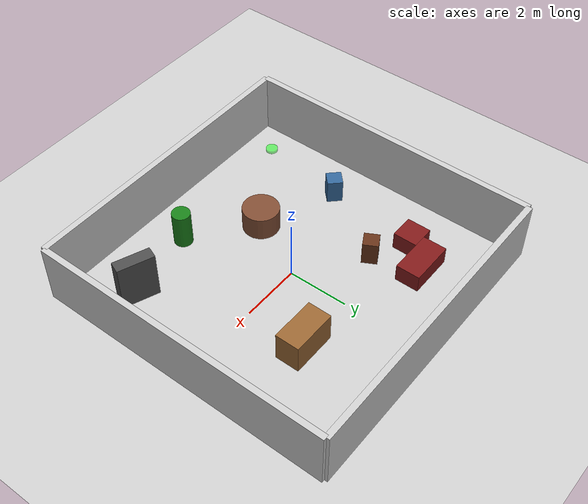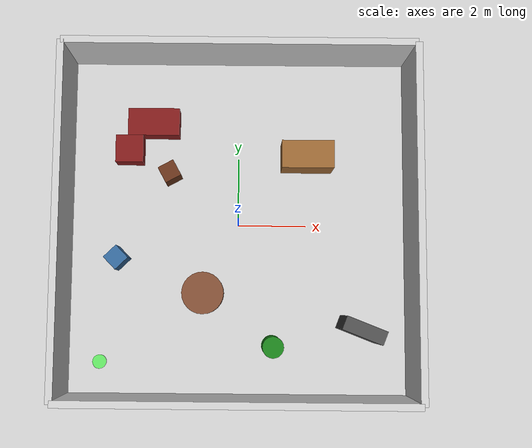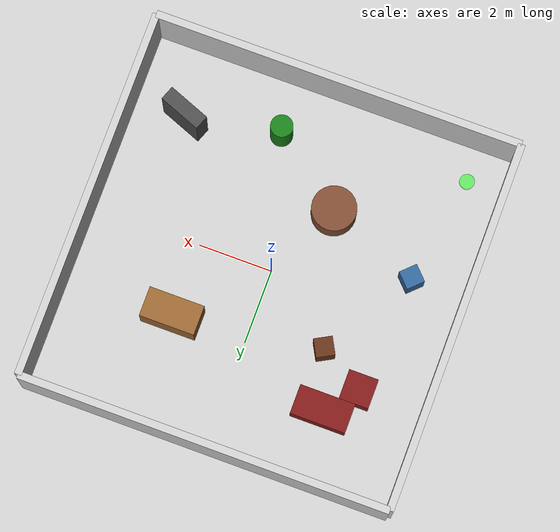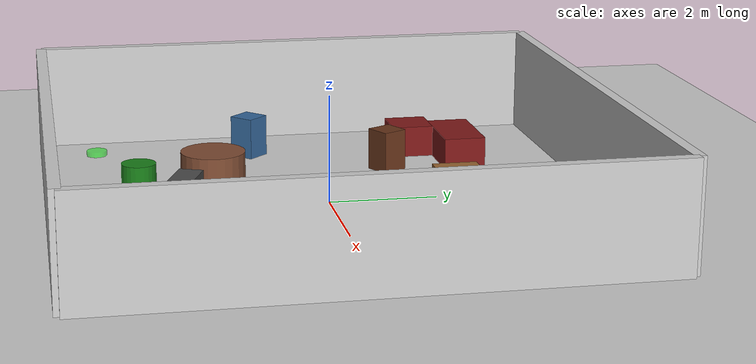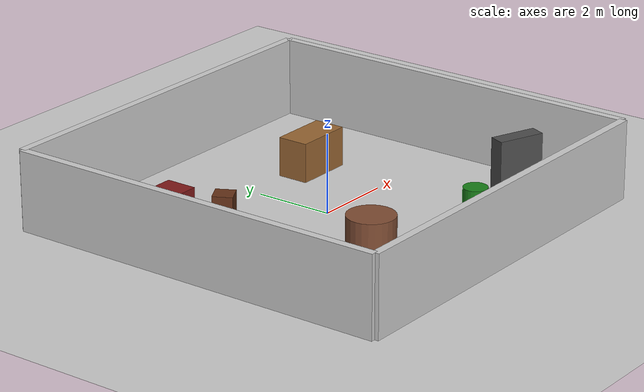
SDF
<?xml version="1.0" ?>
<sdf version="1.6">
  <world name="obstacle_test_world">

    <!-- Basic world settings -->
    <include>
      <uri>model://ground_plane</uri>
    </include>

    <include>
      <uri>model://sun</uri>
    </include>

    <!-- Physics settings -->
    <physics name="default_physics" default="0" type="ode">
      <gravity>0 0 -9.8</gravity>
      <ode>
        <solver>
          <type>quick</type>
          <iters>150</iters>
          <precon_iters>0</precon_iters>
          <sor>1.400000</sor>
          <use_dynamic_moi_rescaling>1</use_dynamic_moi_rescaling>
        </solver>
        <constraints>
          <cfm>0.00001</cfm>
          <erp>0.2</erp>
          <contact_max_correcting_vel>2000.000000</contact_max_correcting_vel>
          <contact_surface_layer>0.01000</contact_surface_layer>
        </constraints>
      </ode>
      <max_step_size>0.004</max_step_size>
      <real_time_factor>1.000000</real_time_factor>
      <real_time_update_rate>250.000000</real_time_update_rate>
    </physics>

    <!-- Scene settings -->
    <scene>
      <ambient>0.4 0.4 0.4 1</ambient>
      <background>0.7 0.7 0.7 1</background>
      <shadows>true</shadows>
    </scene>

    <!-- GUI settings -->
    <gui fullscreen='0'>
      <camera name='user_camera'>
        <pose frame=''>8.0 8.0 12.0 0 0.8 -2.4</pose>
        <view_controller>orbit</view_controller>
        <projection_type>perspective</projection_type>
      </camera>
    </gui>

    <!-- RECTANGULAR ROOM WALLS (10m x 10m)          -->

    <!-- North Wall (top) -->
    <model name="north_wall">
      <pose>0 5 1 0 0 0</pose>
      <static>true</static>
      <link name="link">
        <collision name="collision">
          <geometry>
            <box>
              <size>10 0.2 2</size>
            </box>
          </geometry>
        </collision>
        <visual name="visual">
          <geometry>
            <box>
              <size>10 0.2 2</size>
            </box>
          </geometry>
          <material>
            <ambient>0.8 0.8 0.8 1</ambient>
            <diffuse>0.8 0.8 0.8 1</diffuse>
          </material>
        </visual>
      </link>
    </model>

    <!-- South Wall (bottom) -->
    <model name="south_wall">
      <pose>0 -5 1 0 0 0</pose>
      <static>true</static>
      <link name="link">
        <collision name="collision">
          <geometry>
            <box>
              <size>10 0.2 2</size>
            </box>
          </geometry>
        </collision>
        <visual name="visual">
          <geometry>
            <box>
              <size>10 0.2 2</size>
            </box>
          </geometry>
          <material>
            <ambient>0.8 0.8 0.8 1</ambient>
            <diffuse>0.8 0.8 0.8 1</diffuse>
          </material>
        </visual>
      </link>
    </model>

    <!-- East Wall (right) -->
    <model name="east_wall">
      <pose>5 0 1 0 0 0</pose>
      <static>true</static>
      <link name="link">
        <collision name="collision">
          <geometry>
            <box>
              <size>0.2 10 2</size>
            </box>
          </geometry>
        </collision>
        <visual name="visual">
          <geometry>
            <box>
              <size>0.2 10 2</size>
            </box>
          </geometry>
          <material>
            <ambient>0.8 0.8 0.8 1</ambient>
            <diffuse>0.8 0.8 0.8 1</diffuse>
          </material>
        </visual>
      </link>
    </model>

    <!-- West Wall (left) -->
    <model name="west_wall">
      <pose>-5 0 1 0 0 0</pose>
      <static>true</static>
      <link name="link">
        <collision name="collision">
          <geometry>
            <box>
              <size>0.2 10 2</size>
            </box>
          </geometry>
        </collision>
        <visual name="visual">
          <geometry>
            <box>
              <size>0.2 10 2</size>
            </box>
          </geometry>
          <material>
            <ambient>0.8 0.8 0.8 1</ambient>
            <diffuse>0.8 0.8 0.8 1</diffuse>
          </material>
        </visual>
      </link>
    </model>

    <!-- OBSTACLES INSIDE THE ROOM                    -->

    <!-- Obstacle 1: Large Table -->
    <model name="table_1">
      <pose>2 2 0.5 0 0 0</pose>
      <static>true</static>
      <link name="link">
        <collision name="collision">
          <geometry>
            <box>
              <size>1.5 0.8 1.0</size>
            </box>
          </geometry>
        </collision>
        <visual name="visual">
          <geometry>
            <box>
              <size>1.5 0.8 1.0</size>
            </box>
          </geometry>
          <material>
            <ambient>0.6 0.4 0.2 1</ambient>
            <diffuse>0.6 0.4 0.2 1</diffuse>
          </material>
        </visual>
      </link>
    </model>

    <!-- Obstacle 2: Chair -->
    <model name="chair_1">
      <pose>-2 1.5 0.4 0 0 0.5</pose>
      <static>true</static>
      <link name="link">
        <collision name="collision">
          <geometry>
            <box>
              <size>0.5 0.5 0.8</size>
            </box>
          </geometry>
        </collision>
        <visual name="visual">
          <geometry>
            <box>
              <size>0.5 0.5 0.8</size>
            </box>
          </geometry>
          <material>
            <ambient>0.4 0.2 0.1 1</ambient>
            <diffuse>0.4 0.2 0.1 1</diffuse>
          </material>
        </visual>
      </link>
    </model>

    <!-- Obstacle 3: Small Round Table (simulated as cylinder) -->
    <model name="round_table">
      <pose>-1 -2 0.4 0 0 0</pose>
      <static>true</static>
      <link name="link">
        <collision name="collision">
          <geometry>
            <cylinder>
              <radius>0.6</radius>
              <length>0.8</length>
            </cylinder>
          </geometry>
        </collision>
        <visual name="visual">
          <geometry>
            <cylinder>
              <radius>0.6</radius>
              <length>0.8</length>
            </cylinder>
          </geometry>
          <material>
            <ambient>0.5 0.3 0.2 1</ambient>
            <diffuse>0.5 0.3 0.2 1</diffuse>
          </material>
        </visual>
      </link>
    </model>

    <!-- Obstacle 4: Cabinet/Bookshelf -->
    <model name="cabinet">
      <pose>3.5 -3 0.8 0 0 1.2</pose>
      <static>true</static>
      <link name="link">
        <collision name="collision">
          <geometry>
            <box>
              <size>0.4 1.2 1.6</size>
            </box>
          </geometry>
        </collision>
        <visual name="visual">
          <geometry>
            <box>
              <size>0.4 1.2 1.6</size>
            </box>
          </geometry>
          <material>
            <ambient>0.3 0.3 0.3 1</ambient>
            <diffuse>0.3 0.3 0.3 1</diffuse>
          </material>
        </visual>
      </link>
    </model>

    <!-- Obstacle 5: Another Chair -->
    <model name="chair_2">
      <pose>-3.5 -1 0.4 0 0 -0.8</pose>
      <static>true</static>
      <link name="link">
        <collision name="collision">
          <geometry>
            <box>
              <size>0.5 0.5 0.8</size>
            </box>
          </geometry>
        </collision>
        <visual name="visual">
          <geometry>
            <box>
              <size>0.5 0.5 0.8</size>
            </box>
          </geometry>
          <material>
            <ambient>0.2 0.4 0.6 1</ambient>
            <diffuse>0.2 0.4 0.6 1</diffuse>
          </material>
        </visual>
      </link>
    </model>

    <!-- Obstacle 6: Tall Plant Stand (bonus obstacle) -->
    <model name="plant_stand">
      <pose>1 -3.5 0.6 0 0 0</pose>
      <static>true</static>
      <link name="link">
        <collision name="collision">
          <geometry>
            <cylinder>
              <radius>0.3</radius>
              <length>1.2</length>
            </cylinder>
          </geometry>
        </collision>
        <visual name="visual">
          <geometry>
            <cylinder>
              <radius>0.3</radius>
              <length>1.2</length>
            </cylinder>
          </geometry>
          <material>
            <ambient>0.1 0.5 0.1 1</ambient>
            <diffuse>0.1 0.5 0.1 1</diffuse>
          </material>
        </visual>
      </link>
    </model>

    <!-- Obstacle 7: L-shaped Couch (two connected boxes) -->
    <model name="couch_part1">
      <pose>-2.5 3 0.3 0 0 0</pose>
      <static>true</static>
      <link name="link">
        <collision name="collision">
          <geometry>
            <box>
              <size>1.5 0.8 0.6</size>
            </box>
          </geometry>
        </collision>
        <visual name="visual">
          <geometry>
            <box>
              <size>1.5 0.8 0.6</size>
            </box>
          </geometry>
          <material>
            <ambient>0.5 0.1 0.1 1</ambient>
            <diffuse>0.5 0.1 0.1 1</diffuse>
          </material>
        </visual>
      </link>
    </model>

    <model name="couch_part2">
      <pose>-3.2 2.2 0.3 0 0 1.57</pose>
      <static>true</static>
      <link name="link">
        <collision name="collision">
          <geometry>
            <box>
              <size>0.8 0.8 0.6</size>
            </box>
          </geometry>
        </collision>
        <visual name="visual">
          <geometry>
            <box>
              <size>0.8 0.8 0.6</size>
            </box>
          </geometry>
          <material>
            <ambient>0.5 0.1 0.1 1</ambient>
            <diffuse>0.5 0.1 0.1 1</diffuse>
          </material>
        </visual>
      </link>
    </model>

    <!-- ROBOT SPAWN AREA MARKER (OPTIONAL)          -->
    <!-- Small marker to show good robot spawn location -->
    <model name="spawn_marker">
      <pose>-4 -4 0.05 0 0 0</pose>
      <static>true</static>
      <link name="link">
        <visual name="visual">
          <geometry>
            <cylinder>
              <radius>0.2</radius>
              <length>0.1</length>
            </cylinder>
          </geometry>
          <material>
            <ambient>0 1 0 0.5</ambient>
            <diffuse>0 1 0 0.5</diffuse>
          </material>
        </visual>
      </link>
    </model>

  </world>
</sdf>
